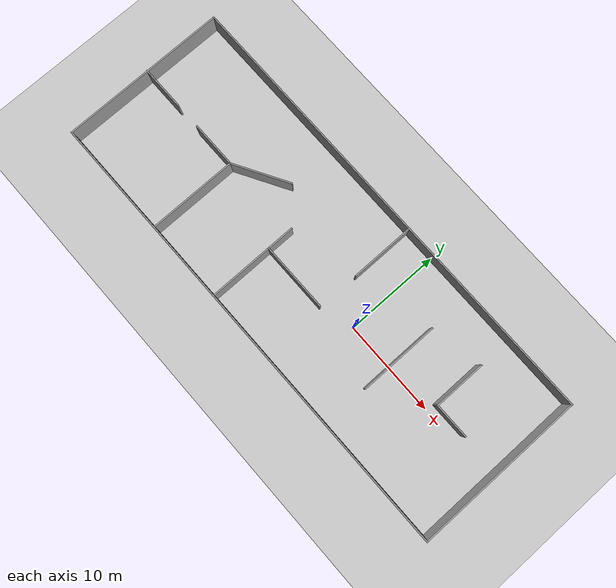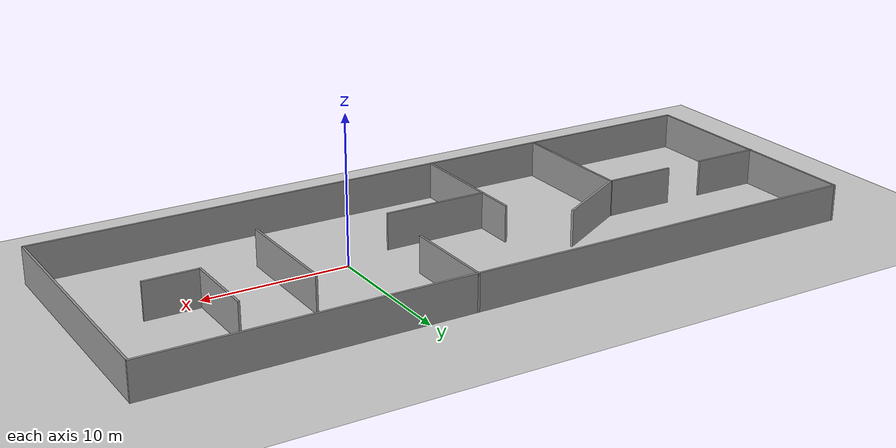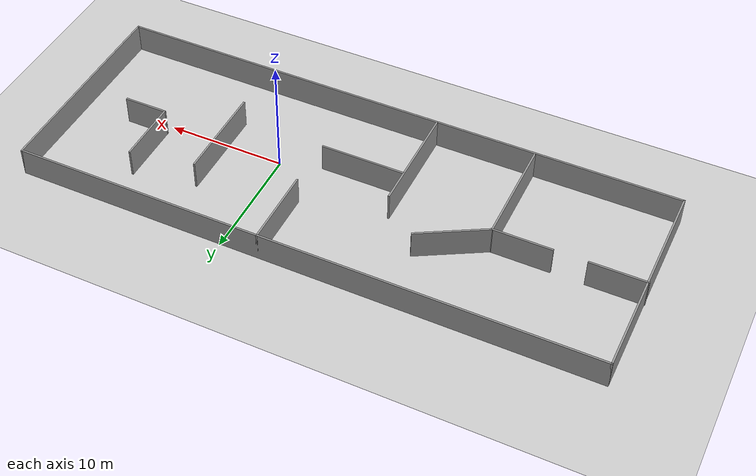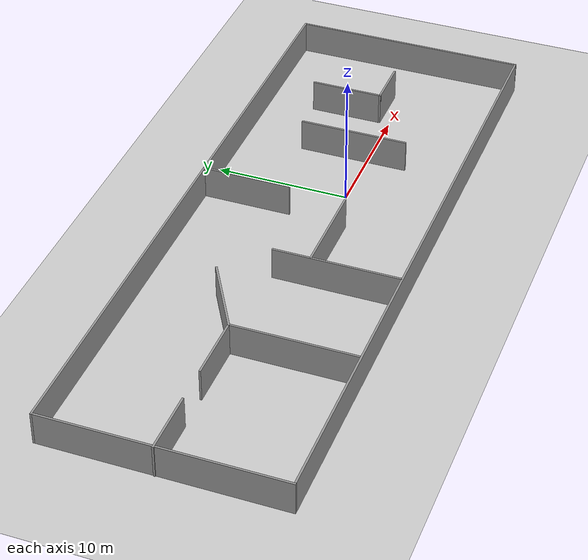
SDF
<sdf version="1.7">
 <world name="default">
  <light name="sun" type="directional">
   <pose>0 0 10 0 -0 0</pose>
   <diffuse>0.8 0.8 0.8 1</diffuse>
   <specular>0.2 0.2 0.2 1</specular>
   <attenuation>
    <range>1000</range>
    <constant>0.9</constant>
    <linear>0.01</linear>
    <quadratic>0.001</quadratic>
   </attenuation>
   <direction>-0.5 0.1 -0.9</direction>
   <spot><inner_angle>0</inner_angle><outer_angle>0</outer_angle><falloff>0</falloff></spot>
  </light>
  <model name="ground_plane">
   <static>1</static>
   <link name="link">
    <collision name="collision">
     <geometry><plane><normal>0 0 1</normal><size>1000 1000</size></plane></geometry>
     <surface>
      <contact><collide_bitmask>65535</collide_bitmask></contact>
      <friction><ode><mu>100</mu><mu2>50</mu2></ode></friction>
     </surface>
    </collision>
    <visual name="visual">
     <cast_shadows>0</cast_shadows>
     <geometry><plane><normal>0 0 1</normal><size>1000 1000</size></plane></geometry>
     <material>
      <script><uri>file://media/materials/scripts/gazebo.material</uri><name>Gazebo/Grey</name></script>
     </material>
    </visual>
   </link>
  </model>
  <gravity>0 0 -9.8</gravity>
  <magnetic_field>6e-06 2.3e-05 -4.2e-05</magnetic_field>
  <atmosphere type="adiabatic"/>
  <physics type="ode">
   <max_step_size>0.001</max_step_size>
   <real_time_factor>1</real_time_factor>
   <real_time_update_rate>1000</real_time_update_rate>
  </physics>
  <scene><ambient>0.4 0.4 0.4 1</ambient><background>0.7 0.7 0.7 1</background><shadows>1</shadows></scene>
  <audio><device>default</device></audio>
  <spherical_coordinates>
   <surface_model>EARTH_WGS84</surface_model>
   <latitude_deg>0</latitude_deg>
   <longitude_deg>0</longitude_deg>
   <elevation>0</elevation>
   <heading_deg>0</heading_deg>
  </spherical_coordinates>
  <model name="map">
   <pose>-6.65302 1.03433 0 0 -0 0</pose>
   <link name="Wall_28">
    <collision name="Wall_28_Collision">
     <geometry><box><size>17.75 0.15 2.5</size></box></geometry>
     <pose>0 0 1.25 0 -0 0</pose>
    </collision>
    <visual name="Wall_28_Visual">
     <pose>0 0 1.25 0 -0 0</pose>
     <geometry><box><size>17.75 0.15 2.5</size></box></geometry>
     <material>
      <script><uri>file://media/materials/scripts/gazebo.material</uri><name>Gazebo/Grey</name></script>
      <ambient>1 1 1 1</ambient>
     </material>
     <meta><layer>0</layer></meta>
    </visual>
    <pose>-24.6446 0 0 0 -0 -1.5708</pose>
   </link>
   <link name="Wall_29">
    <collision name="Wall_29_Collision">
     <geometry><box><size>49.5 0.15 2.5</size></box></geometry>
     <pose>0 0 1.25 0 -0 0</pose>
    </collision>
    <visual name="Wall_29_Visual">
     <pose>0 0 1.25 0 -0 0</pose>
     <geometry><box><size>49.5 0.15 2.5</size></box></geometry>
     <material>
      <script><uri>file://media/materials/scripts/gazebo.material</uri><name>Gazebo/Grey</name></script>
      <ambient>1 1 1 1</ambient>
     </material>
     <meta><layer>0</layer></meta>
    </visual>
    <pose>0.030417 -8.8 0 0 -0 0</pose>
   </link>
   <link name="Wall_30">
    <collision name="Wall_30_Collision">
     <geometry><box><size>17.75 0.15 2.5</size></box></geometry>
     <pose>0 0 1.25 0 -0 0</pose>
    </collision>
    <visual name="Wall_30_Visual">
     <pose>0 0 1.25 0 -0 0</pose>
     <geometry><box><size>17.75 0.15 2.5</size></box></geometry>
     <material>
      <script><uri>file://media/materials/scripts/gazebo.material</uri><name>Gazebo/Grey</name></script>
      <ambient>1 1 1 1</ambient>
     </material>
     <meta><layer>0</layer></meta>
    </visual>
    <pose>24.7054 0 0 0 -0 1.5708</pose>
   </link>
   <link name="Wall_33">
    <collision name="Wall_33_Collision">
     <geometry><box><size>49.5 0.15 2.5</size></box></geometry>
     <pose>0 0 1.25 0 -0 0</pose>
    </collision>
    <visual name="Wall_33_Visual">
     <pose>0 0 1.25 0 -0 0</pose>
     <geometry><box><size>49.5 0.15 2.5</size></box></geometry>
     <material>
      <script><uri>file://media/materials/scripts/gazebo.material</uri><name>Gazebo/Grey</name></script>
      <ambient>1 1 1 1</ambient>
     </material>
     <meta><layer>0</layer></meta>
    </visual>
    <pose>0.030417 8.8 0 0 -0 0</pose>
   </link>
   <link name="Wall_42">
    <collision name="Wall_42_Collision">
     <geometry><box><size>9.25 0.15 2.5</size></box></geometry>
     <pose>0 0 1.25 0 -0 0</pose>
    </collision>
    <visual name="Wall_42_Visual">
     <pose>0 0 1.25 0 -0 0</pose>
     <geometry><box><size>9.25 0.15 2.5</size></box></geometry>
     <material>
      <script><uri>file://media/materials/scripts/gazebo.material</uri><name>Gazebo/Grey</name></script>
      <ambient>1 1 1 1</ambient>
     </material>
     <meta><layer>0</layer></meta>
    </visual>
    <pose>-12.4167 -4.08439 0 0 -0 -1.5708</pose>
   </link>
   <link name="Wall_45">
    <collision name="Wall_45_Collision">
     <geometry><box><size>5 0.15 2.5</size></box></geometry>
     <pose>0 0 1.25 0 -0 0</pose>
    </collision>
    <visual name="Wall_45_Visual">
     <pose>0 0 1.25 0 -0 0</pose>
     <geometry><box><size>5 0.15 2.5</size></box></geometry>
     <material>
      <script><uri>file://media/materials/scripts/gazebo.material</uri><name>Gazebo/Grey</name></script>
      <ambient>1 1 1 1</ambient>
     </material>
     <meta><layer>0</layer></meta>
    </visual>
    <pose>-14.8417 0.465605 0 0 -0 3.14159</pose>
   </link>
   <link name="Wall_47">
    <collision name="Wall_47_Collision">
     <geometry><box><size>4.75 0.15 2.5</size></box></geometry>
     <pose>0 0 1.25 0 -0 0</pose>
    </collision>
    <visual name="Wall_47_Visual">
     <pose>0 0 1.25 0 -0 0</pose>
     <geometry><box><size>4.75 0.15 2.5</size></box></geometry>
     <material>
      <script><uri>file://media/materials/scripts/gazebo.material</uri><name>Gazebo/Grey</name></script>
      <ambient>1 1 1 1</ambient>
     </material>
     <meta><layer>0</layer></meta>
    </visual>
    <pose>-22.4054 0.465605 0 0 -0 0</pose>
   </link>
   <link name="Wall_49">
    <collision name="Wall_49_Collision">
     <geometry><box><size>6.25 0.15 2.5</size></box></geometry>
     <pose>0 0 1.25 0 -0 0</pose>
    </collision>
    <visual name="Wall_49_Visual">
     <pose>0 0 1.25 0 -0 0</pose>
     <geometry><box><size>6.25 0.15 2.5</size></box></geometry>
     <material>
      <script><uri>file://media/materials/scripts/gazebo.material</uri><name>Gazebo/Grey</name></script>
      <ambient>1 1 1 1</ambient>
     </material>
     <meta><layer>0</layer></meta>
    </visual>
    <pose>-9.77537 1.9906 0 0 -0 0.523599</pose>
   </link>
   <link name="Wall_51">
    <collision name="Wall_51_Collision">
     <geometry><box><size>9.5 0.15 2.5</size></box></geometry>
     <pose>0 0 1.25 0 -0 0</pose>
    </collision>
    <visual name="Wall_51_Visual">
     <pose>0 0 1.25 0 -0 0</pose>
     <geometry><box><size>9.5 0.15 2.5</size></box></geometry>
     <material>
      <script><uri>file://media/materials/scripts/gazebo.material</uri><name>Gazebo/Grey</name></script>
      <ambient>1 1 1 1</ambient>
     </material>
     <meta><layer>0</layer></meta>
    </visual>
    <pose>-3.89985 -4.04548 0 0 -0 1.5708</pose>
   </link>
   <link name="Wall_53">
    <collision name="Wall_53_Collision">
     <geometry><box><size>6.75 0.15 2.5</size></box></geometry>
     <pose>0 0 1.25 0 -0 0</pose>
    </collision>
    <visual name="Wall_53_Visual">
     <pose>0 0 1.25 0 -0 0</pose>
     <geometry><box><size>6.75 0.15 2.5</size></box></geometry>
     <material>
      <script><uri>file://media/materials/scripts/gazebo.material</uri><name>Gazebo/Grey</name></script>
      <ambient>1 1 1 1</ambient>
     </material>
     <meta><layer>0</layer></meta>
    </visual>
    <pose>3.33952 5.5 0 0 -0 -1.5708</pose>
   </link>
   <link name="Wall_55">
    <collision name="Wall_55_Collision">
     <geometry><box><size>7.25 0.15 2.5</size></box></geometry>
     <pose>0 0 1.25 0 -0 0</pose>
    </collision>
    <visual name="Wall_55_Visual">
     <pose>0 0 1.25 0 -0 0</pose>
     <geometry><box><size>7.25 0.15 2.5</size></box></geometry>
     <material>
      <script><uri>file://media/materials/scripts/gazebo.material</uri><name>Gazebo/Grey</name></script>
      <ambient>1 1 1 1</ambient>
     </material>
     <meta><layer>0</layer></meta>
    </visual>
    <pose>-0.349848 -2.1503 0 0 -0 0</pose>
   </link>
   <link name="Wall_57">
    <collision name="Wall_57_Collision">
     <geometry><box><size>8.25 0.15 2.5</size></box></geometry>
     <pose>0 0 1.25 0 -0 0</pose>
    </collision>
    <visual name="Wall_57_Visual">
     <pose>0 0 1.25 0 -0 0</pose>
     <geometry><box><size>8.25 0.15 2.5</size></box></geometry>
     <material>
      <script><uri>file://media/materials/scripts/gazebo.material</uri><name>Gazebo/Grey</name></script>
      <ambient>1 1 1 1</ambient>
     </material>
     <meta><layer>0</layer></meta>
    </visual>
    <pose>11.4914 0.065705 0 0 -0 -1.5708</pose>
   </link>
   <link name="Wall_59">
    <collision name="Wall_59_Collision">
     <geometry><box><size>3.75 0.15 2.5</size></box></geometry>
     <pose>0 0 1.25 0 -0 0</pose>
    </collision>
    <visual name="Wall_59_Visual">
     <pose>0 0 1.25 0 -0 0</pose>
     <geometry><box><size>3.75 0.15 2.5</size></box></geometry>
     <material>
      <script><uri>file://media/materials/scripts/gazebo.material</uri><name>Gazebo/Grey</name></script>
      <ambient>1 1 1 1</ambient>
     </material>
     <meta><layer>0</layer></meta>
    </visual>
    <pose>18.6449 -0.20358 0 0 -0 0</pose>
   </link>
   <link name="Wall_61">
    <collision name="Wall_61_Collision">
     <geometry><box><size>5.5 0.15 2.5</size></box></geometry>
     <pose>0 0 1.25 0 -0 0</pose>
    </collision>
    <visual name="Wall_61_Visual">
     <pose>0 0 1.25 0 -0 0</pose>
     <geometry><box><size>5.5 0.15 2.5</size></box></geometry>
     <material>
      <script><uri>file://media/materials/scripts/gazebo.material</uri><name>Gazebo/Grey</name></script>
      <ambient>1 1 1 1</ambient>
     </material>
     <meta><layer>0</layer></meta>
    </visual>
    <pose>16.8449 2.47142 0 0 -0 1.5708</pose>
   </link>
   <static>1</static>
  </model>
 </world>
</sdf>
